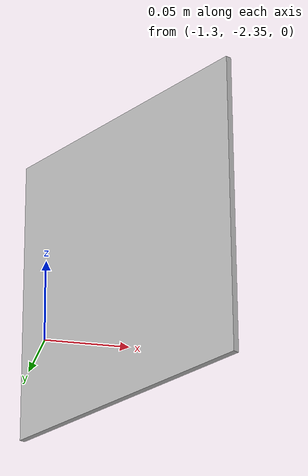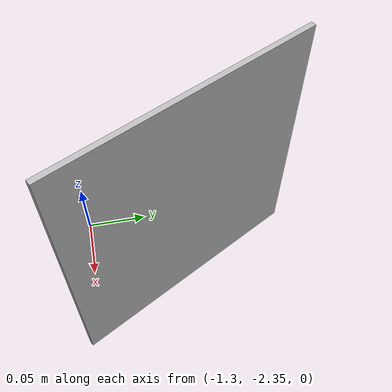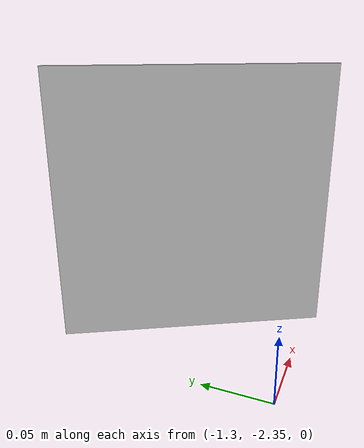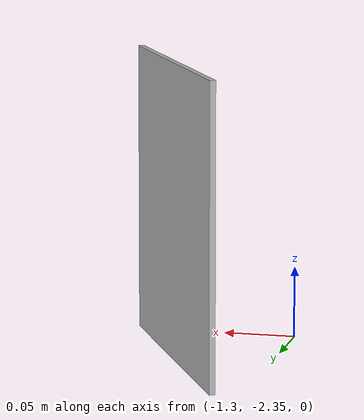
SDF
<?xml version="1.0" ?><sdf version="1.6">
  <model name="qr2">
    <static>true</static>
    <link name="link">
      <visual name="visual">
        <geometry>
          <mesh>
            <uri>model://qr2/meshes/qr2.dae</uri>
          <scale>0.4 0.4 0.4</scale></mesh>
        </geometry>
      </visual>
    </link>
    <pose>-1.235 -2.27 0 0 -0 -2.65</pose>
  </model>
</sdf>
